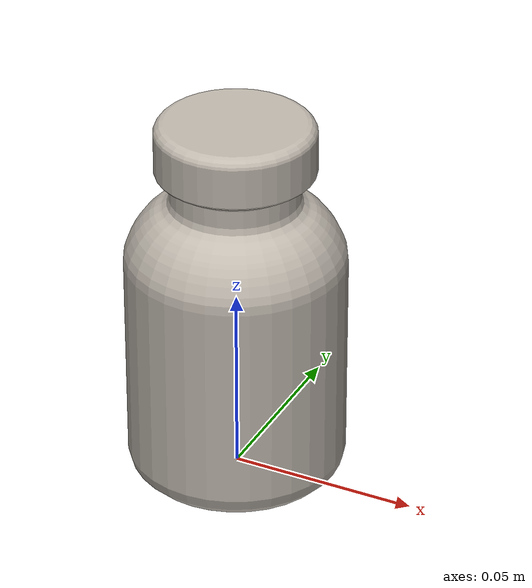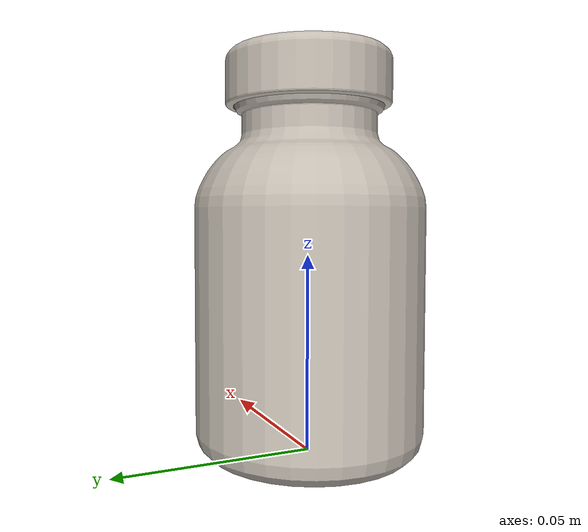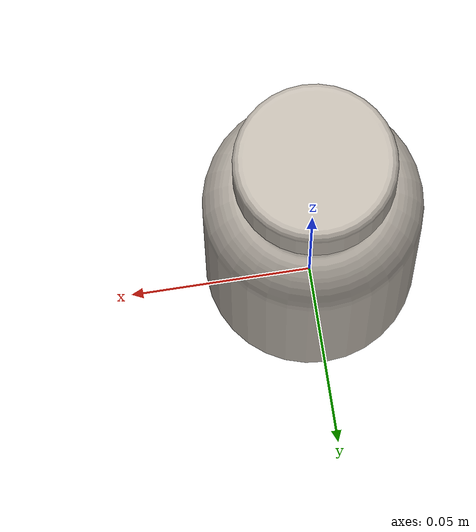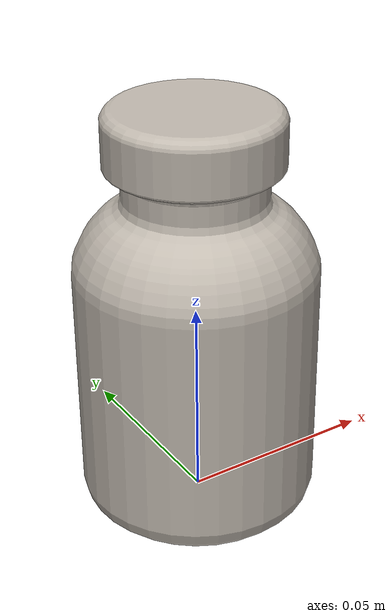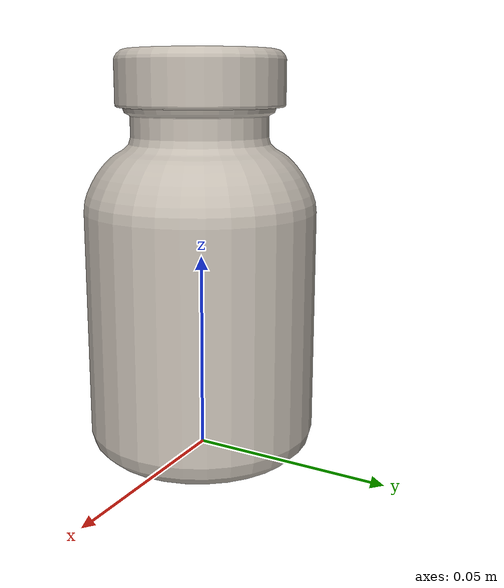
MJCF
<?xml version="1.0" ?>
<mujoco model="pill_bottle">
  <asset>
    <texture type="2d" name="Diffuse" file="Diffuse.png"/>
    <material name="Diffuse" texture="Diffuse" specular="0.4" shininess="0.001"/>
    <mesh file="pill_bottle_body.obj" scale="0.000288 0.000288 0.000288"/>
    <mesh file="pill_bottle_cap.obj" scale="0.000288 0.000288 0.000288"/>
    <mesh file="pill_bottle_cap_collision_0.obj" scale="0.000288 0.000288 0.000288"/>
  </asset>
  <worldbody>
    <body name="pill_bottle" pos="0 0 0">
      <inertial pos="0 0 0.049951" mass="0.05" diaginertia="0.0008 0.0008 0.0005"/>
      <geom material="Diffuse" mesh="pill_bottle_body" class="visual"/>
      <geom type="cylinder" size="0.0288 0.05" pos="0 0 0.025" class="collision" contype="1" conaffinity="1"/>
      <geom name="neck_collision" type="cylinder" size="0.0187 0.025" pos="0 0 0.075" class="collision" contype="2" conaffinity="2"/>
      <site class="grasppoint" pos="0.0000 0.0000 0.059941"/>
      <site class="grasppoint" pos="0.0000 0.0000 0.079921"/>
      <site class="keypoint" pos="0.028800 -0.028800 0.0000"/>
      <site class="keypoint" pos="-0.028800 0.028800 0.0000"/>
      <site class="keypoint" pos="0.028800 0.028800 0.0000"/>
      <site class="keypoint" pos="-0.028800 -0.028800 0.0000"/>
      <site class="placepoint" pos="0.0000 0.0000 0.099901"/>
      <site name="top_site" pos="0 0 0.099901" size="0.01" rgba="1 0 0 0"/>
      <site name="bottom_site" pos="0 0 0.0" size="0.01" rgba="0 1 0 0"/>
      <body name="cap" pos="0 0 0.087">
        <joint name="door" type="hinge" pos="0 0 0" axis="0 0 1" range="-6.28 6.28" damping="2"/>
        <joint name="cap_slide" type="slide" pos="0 0 0" axis="0 0 1" range="0 0.02" damping="2"/>
        <geom material="Diffuse" mesh="pill_bottle_cap" class="visual"/>
        <geom mesh="pill_bottle_cap_collision_0" class="collision" contype="2" conaffinity="1"/>
        <site class="grasppoint" pos="0.0000 0.0000 0.006863"/>
        <site class="grasppoint" pos="0.0000 0.0000 0.010981"/>
      </body>
    </body>
  </worldbody>
  <compiler boundmass="0.015" boundinertia="1e-05" angle="radian"/>
  <default>
    <default class="visual">
      <geom group="2" type="mesh" contype="0" conaffinity="0" density="50"/>
    </default>
    <default class="keypoint">
      <site type="sphere" size="0.01" group="3" rgba="1 0 0 1"/>
    </default>
    <default class="placepoint">
      <site type="sphere" size="0.01" group="2" rgba="0 0 1 0"/>
    </default>
    <default class="collision">
      <geom group="3" type="mesh" density="50" friction="1 1 0.001" solimp="0.998 0.998 0.001" solref="0.02 1"/>
    </default>
    <default class="grasppoint">
      <site type="sphere" size="0.005" group="4" rgba="0 0 1 1"/>
    </default>
  </default>
  <contact>
    <exclude body1="pill_bottle" body2="cap"/>
  </contact>
</mujoco>
